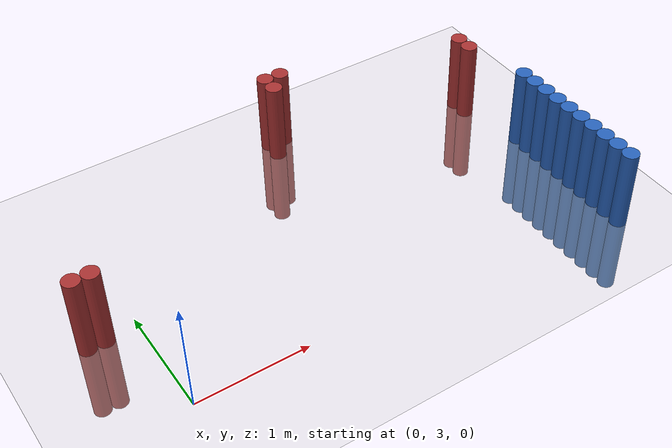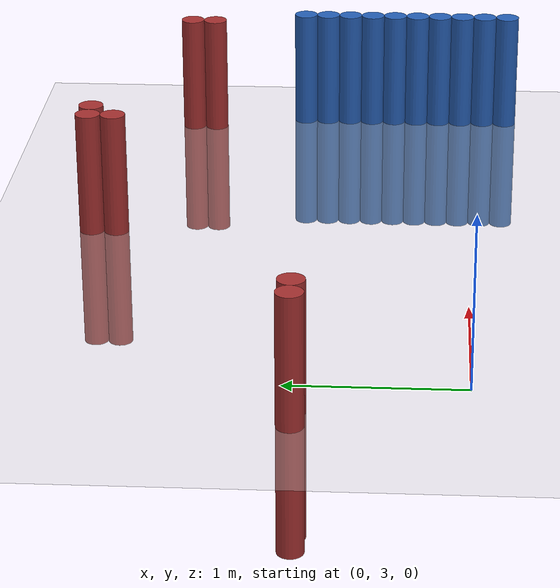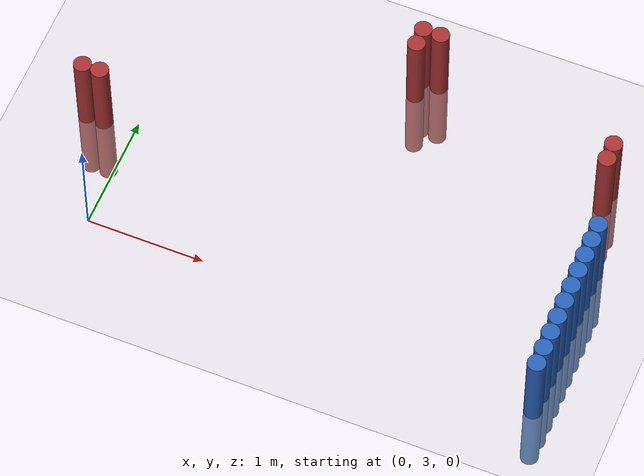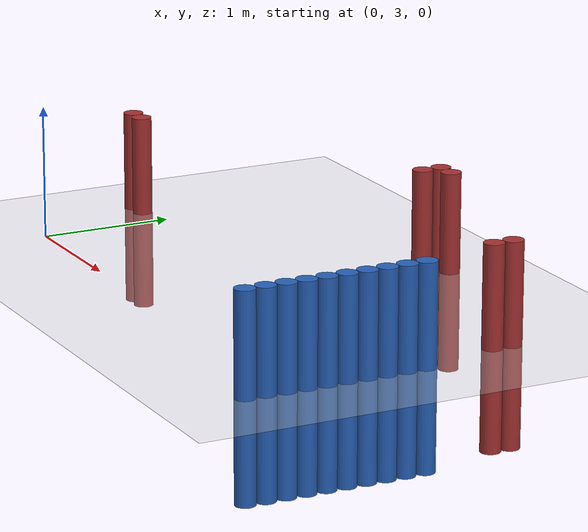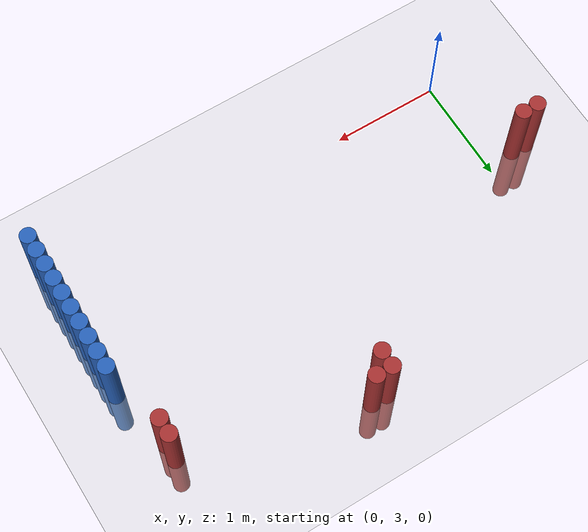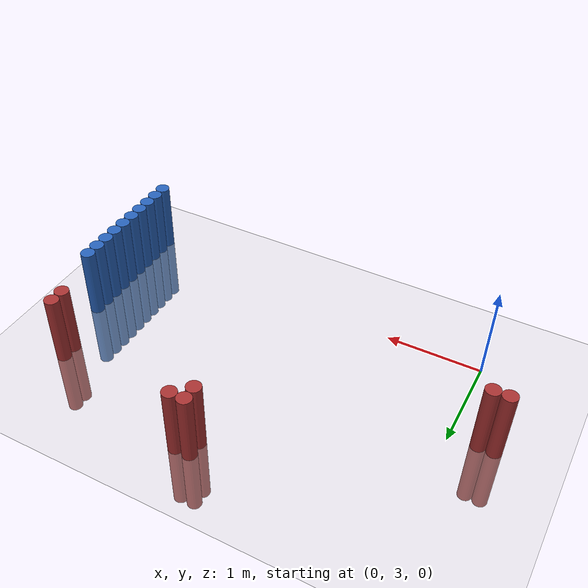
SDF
<sdf version="1.6">
 <world name="default">
  <model name="ground_plane">
   <static>1</static>
   <link name="link">
    <collision name="collision">
     <geometry><plane><normal>0 0 1</normal><size>100 100</size></plane></geometry>
     <surface><friction><ode><mu>100</mu><mu2>50</mu2></ode></friction></surface>
    </collision>
    <visual name="visual">
     <cast_shadows>0</cast_shadows>
     <geometry><plane><normal>0 0 1</normal><size>100 100</size></plane></geometry>
     <material>
      <script><uri>file://media/materials/scripts/gazebo.material</uri><name>Gazebo/Grey</name></script>
     </material>
    </visual>
   </link>
  </model>
  <model name="unit_cylinder_150">
   <static>1</static>
   <pose>3.925000 2.725000 0.000000 0.000000 0.000000 0.000000</pose>
   <link name="link">
    <inertial>
     <mass>1</mass>
     <inertia><ixx>0.145833</ixx><ixy>0</ixy><ixz>0</ixz><iyy>0.145833</iyy><iyz>0</iyz><izz>0.125</izz></inertia>
    </inertial>
    <collision name="collision">
     <geometry><cylinder><radius>0.075000</radius><length>1.5</length></cylinder></geometry>
    </collision>
    <visual name="visual">
     <geometry><cylinder><radius>0.075000</radius><length>1.5</length></cylinder></geometry>
     <material>
      <ambient>0.152000 0.379000 0.720000 1</ambient>
      <diffuse>0.152000 0.379000 0.720000 1</diffuse>
     </material>
     <material>
      <script><name>Gazebo/Grey</name><uri>file://media/materials/scripts/gazebo.material</uri></script>
     </material>
    </visual>
   </link>
  </model>
  <model name="unit_cylinder_152">
   <static>1</static>
   <pose>3.925000 2.875000 0.000000 0.000000 0.000000 0.000000</pose>
   <link name="link">
    <inertial>
     <mass>1</mass>
     <inertia><ixx>0.145833</ixx><ixy>0</ixy><ixz>0</ixz><iyy>0.145833</iyy><iyz>0</iyz><izz>0.125</izz></inertia>
    </inertial>
    <collision name="collision">
     <geometry><cylinder><radius>0.075000</radius><length>1.5</length></cylinder></geometry>
    </collision>
    <visual name="visual">
     <geometry><cylinder><radius>0.075000</radius><length>1.5</length></cylinder></geometry>
     <material>
      <ambient>0.152000 0.379000 0.720000 1</ambient>
      <diffuse>0.152000 0.379000 0.720000 1</diffuse>
     </material>
     <material>
      <script><name>Gazebo/Grey</name><uri>file://media/materials/scripts/gazebo.material</uri></script>
     </material>
    </visual>
   </link>
  </model>
  <model name="unit_cylinder_154">
   <static>1</static>
   <pose>3.925000 3.025000 0.000000 0.000000 0.000000 0.000000</pose>
   <link name="link">
    <inertial>
     <mass>1</mass>
     <inertia><ixx>0.145833</ixx><ixy>0</ixy><ixz>0</ixz><iyy>0.145833</iyy><iyz>0</iyz><izz>0.125</izz></inertia>
    </inertial>
    <collision name="collision">
     <geometry><cylinder><radius>0.075000</radius><length>1.5</length></cylinder></geometry>
    </collision>
    <visual name="visual">
     <geometry><cylinder><radius>0.075000</radius><length>1.5</length></cylinder></geometry>
     <material>
      <ambient>0.152000 0.379000 0.720000 1</ambient>
      <diffuse>0.152000 0.379000 0.720000 1</diffuse>
     </material>
     <material>
      <script><name>Gazebo/Grey</name><uri>file://media/materials/scripts/gazebo.material</uri></script>
     </material>
    </visual>
   </link>
  </model>
  <model name="unit_cylinder_156">
   <static>1</static>
   <pose>3.925000 3.175000 0.000000 0.000000 0.000000 0.000000</pose>
   <link name="link">
    <inertial>
     <mass>1</mass>
     <inertia><ixx>0.145833</ixx><ixy>0</ixy><ixz>0</ixz><iyy>0.145833</iyy><iyz>0</iyz><izz>0.125</izz></inertia>
    </inertial>
    <collision name="collision">
     <geometry><cylinder><radius>0.075000</radius><length>1.5</length></cylinder></geometry>
    </collision>
    <visual name="visual">
     <geometry><cylinder><radius>0.075000</radius><length>1.5</length></cylinder></geometry>
     <material>
      <ambient>0.152000 0.379000 0.720000 1</ambient>
      <diffuse>0.152000 0.379000 0.720000 1</diffuse>
     </material>
     <material>
      <script><name>Gazebo/Grey</name><uri>file://media/materials/scripts/gazebo.material</uri></script>
     </material>
    </visual>
   </link>
  </model>
  <model name="unit_cylinder_158">
   <static>1</static>
   <pose>3.925000 3.325000 0.000000 0.000000 0.000000 0.000000</pose>
   <link name="link">
    <inertial>
     <mass>1</mass>
     <inertia><ixx>0.145833</ixx><ixy>0</ixy><ixz>0</ixz><iyy>0.145833</iyy><iyz>0</iyz><izz>0.125</izz></inertia>
    </inertial>
    <collision name="collision">
     <geometry><cylinder><radius>0.075000</radius><length>1.5</length></cylinder></geometry>
    </collision>
    <visual name="visual">
     <geometry><cylinder><radius>0.075000</radius><length>1.5</length></cylinder></geometry>
     <material>
      <ambient>0.152000 0.379000 0.720000 1</ambient>
      <diffuse>0.152000 0.379000 0.720000 1</diffuse>
     </material>
     <material>
      <script><name>Gazebo/Grey</name><uri>file://media/materials/scripts/gazebo.material</uri></script>
     </material>
    </visual>
   </link>
  </model>
  <model name="unit_cylinder_160">
   <static>1</static>
   <pose>3.925000 3.475000 0.000000 0.000000 0.000000 0.000000</pose>
   <link name="link">
    <inertial>
     <mass>1</mass>
     <inertia><ixx>0.145833</ixx><ixy>0</ixy><ixz>0</ixz><iyy>0.145833</iyy><iyz>0</iyz><izz>0.125</izz></inertia>
    </inertial>
    <collision name="collision">
     <geometry><cylinder><radius>0.075000</radius><length>1.5</length></cylinder></geometry>
    </collision>
    <visual name="visual">
     <geometry><cylinder><radius>0.075000</radius><length>1.5</length></cylinder></geometry>
     <material>
      <ambient>0.152000 0.379000 0.720000 1</ambient>
      <diffuse>0.152000 0.379000 0.720000 1</diffuse>
     </material>
     <material>
      <script><name>Gazebo/Grey</name><uri>file://media/materials/scripts/gazebo.material</uri></script>
     </material>
    </visual>
   </link>
  </model>
  <model name="unit_cylinder_162">
   <static>1</static>
   <pose>3.925000 3.625000 0.000000 0.000000 0.000000 0.000000</pose>
   <link name="link">
    <inertial>
     <mass>1</mass>
     <inertia><ixx>0.145833</ixx><ixy>0</ixy><ixz>0</ixz><iyy>0.145833</iyy><iyz>0</iyz><izz>0.125</izz></inertia>
    </inertial>
    <collision name="collision">
     <geometry><cylinder><radius>0.075000</radius><length>1.5</length></cylinder></geometry>
    </collision>
    <visual name="visual">
     <geometry><cylinder><radius>0.075000</radius><length>1.5</length></cylinder></geometry>
     <material>
      <ambient>0.152000 0.379000 0.720000 1</ambient>
      <diffuse>0.152000 0.379000 0.720000 1</diffuse>
     </material>
     <material>
      <script><name>Gazebo/Grey</name><uri>file://media/materials/scripts/gazebo.material</uri></script>
     </material>
    </visual>
   </link>
  </model>
  <model name="unit_cylinder_164">
   <static>1</static>
   <pose>3.925000 3.775000 0.000000 0.000000 0.000000 0.000000</pose>
   <link name="link">
    <inertial>
     <mass>1</mass>
     <inertia><ixx>0.145833</ixx><ixy>0</ixy><ixz>0</ixz><iyy>0.145833</iyy><iyz>0</iyz><izz>0.125</izz></inertia>
    </inertial>
    <collision name="collision">
     <geometry><cylinder><radius>0.075000</radius><length>1.5</length></cylinder></geometry>
    </collision>
    <visual name="visual">
     <geometry><cylinder><radius>0.075000</radius><length>1.5</length></cylinder></geometry>
     <material>
      <ambient>0.152000 0.379000 0.720000 1</ambient>
      <diffuse>0.152000 0.379000 0.720000 1</diffuse>
     </material>
     <material>
      <script><name>Gazebo/Grey</name><uri>file://media/materials/scripts/gazebo.material</uri></script>
     </material>
    </visual>
   </link>
  </model>
  <model name="unit_cylinder_166">
   <static>1</static>
   <pose>3.925000 3.925000 0.000000 0.000000 0.000000 0.000000</pose>
   <link name="link">
    <inertial>
     <mass>1</mass>
     <inertia><ixx>0.145833</ixx><ixy>0</ixy><ixz>0</ixz><iyy>0.145833</iyy><iyz>0</iyz><izz>0.125</izz></inertia>
    </inertial>
    <collision name="collision">
     <geometry><cylinder><radius>0.075000</radius><length>1.5</length></cylinder></geometry>
    </collision>
    <visual name="visual">
     <geometry><cylinder><radius>0.075000</radius><length>1.5</length></cylinder></geometry>
     <material>
      <ambient>0.152000 0.379000 0.720000 1</ambient>
      <diffuse>0.152000 0.379000 0.720000 1</diffuse>
     </material>
     <material>
      <script><name>Gazebo/Grey</name><uri>file://media/materials/scripts/gazebo.material</uri></script>
     </material>
    </visual>
   </link>
  </model>
  <model name="unit_cylinder_168">
   <static>1</static>
   <pose>3.925000 4.075000 0.000000 0.000000 0.000000 0.000000</pose>
   <link name="link">
    <inertial>
     <mass>1</mass>
     <inertia><ixx>0.145833</ixx><ixy>0</ixy><ixz>0</ixz><iyy>0.145833</iyy><iyz>0</iyz><izz>0.125</izz></inertia>
    </inertial>
    <collision name="collision">
     <geometry><cylinder><radius>0.075000</radius><length>1.5</length></cylinder></geometry>
    </collision>
    <visual name="visual">
     <geometry><cylinder><radius>0.075000</radius><length>1.5</length></cylinder></geometry>
     <material>
      <ambient>0.152000 0.379000 0.720000 1</ambient>
      <diffuse>0.152000 0.379000 0.720000 1</diffuse>
     </material>
     <material>
      <script><name>Gazebo/Grey</name><uri>file://media/materials/scripts/gazebo.material</uri></script>
     </material>
    </visual>
   </link>
  </model>
  <model name="unit_cylinder_294">
   <static>1</static>
   <pose>-0.425000 3.925000 0.000000 0.000000 0.000000 0.000000</pose>
   <link name="link">
    <inertial>
     <mass>1</mass>
     <inertia><ixx>0.145833</ixx><ixy>0</ixy><ixz>0</ixz><iyy>0.145833</iyy><iyz>0</iyz><izz>0.125</izz></inertia>
    </inertial>
    <collision name="collision">
     <geometry><cylinder><radius>0.075000</radius><length>1.5</length></cylinder></geometry>
    </collision>
    <visual name="visual">
     <geometry><cylinder><radius>0.075000</radius><length>1.5</length></cylinder></geometry>
     <material>
      <ambient>0.648000 0.192000 0.192000 1</ambient>
      <diffuse>0.648000 0.192000 0.192000 1</diffuse>
     </material>
     <material>
      <script><name>Gazebo/Grey</name><uri>file://media/materials/scripts/gazebo.material</uri></script>
     </material>
    </visual>
   </link>
  </model>
  <model name="unit_cylinder_297">
   <static>1</static>
   <pose>-0.275000 3.925000 0.000000 0.000000 0.000000 0.000000</pose>
   <link name="link">
    <inertial>
     <mass>1</mass>
     <inertia><ixx>0.145833</ixx><ixy>0</ixy><ixz>0</ixz><iyy>0.145833</iyy><iyz>0</iyz><izz>0.125</izz></inertia>
    </inertial>
    <collision name="collision">
     <geometry><cylinder><radius>0.075000</radius><length>1.5</length></cylinder></geometry>
    </collision>
    <visual name="visual">
     <geometry><cylinder><radius>0.075000</radius><length>1.5</length></cylinder></geometry>
     <material>
      <ambient>0.648000 0.192000 0.192000 1</ambient>
      <diffuse>0.648000 0.192000 0.192000 1</diffuse>
     </material>
     <material>
      <script><name>Gazebo/Grey</name><uri>file://media/materials/scripts/gazebo.material</uri></script>
     </material>
    </visual>
   </link>
  </model>
  <model name="unit_cylinder_310">
   <static>1</static>
   <pose>1.975000 5.125000 0.000000 0.000000 0.000000 0.000000</pose>
   <link name="link">
    <inertial>
     <mass>1</mass>
     <inertia><ixx>0.145833</ixx><ixy>0</ixy><ixz>0</ixz><iyy>0.145833</iyy><iyz>0</iyz><izz>0.125</izz></inertia>
    </inertial>
    <collision name="collision">
     <geometry><cylinder><radius>0.075000</radius><length>1.5</length></cylinder></geometry>
    </collision>
    <visual name="visual">
     <geometry><cylinder><radius>0.075000</radius><length>1.5</length></cylinder></geometry>
     <material>
      <ambient>0.648000 0.192000 0.192000 1</ambient>
      <diffuse>0.648000 0.192000 0.192000 1</diffuse>
     </material>
     <material>
      <script><name>Gazebo/Grey</name><uri>file://media/materials/scripts/gazebo.material</uri></script>
     </material>
    </visual>
   </link>
  </model>
  <model name="unit_cylinder_311">
   <static>1</static>
   <pose>1.975000 5.275000 0.000000 0.000000 0.000000 0.000000</pose>
   <link name="link">
    <inertial>
     <mass>1</mass>
     <inertia><ixx>0.145833</ixx><ixy>0</ixy><ixz>0</ixz><iyy>0.145833</iyy><iyz>0</iyz><izz>0.125</izz></inertia>
    </inertial>
    <collision name="collision">
     <geometry><cylinder><radius>0.075000</radius><length>1.5</length></cylinder></geometry>
    </collision>
    <visual name="visual">
     <geometry><cylinder><radius>0.075000</radius><length>1.5</length></cylinder></geometry>
     <material>
      <ambient>0.648000 0.192000 0.192000 1</ambient>
      <diffuse>0.648000 0.192000 0.192000 1</diffuse>
     </material>
     <material>
      <script><name>Gazebo/Grey</name><uri>file://media/materials/scripts/gazebo.material</uri></script>
     </material>
    </visual>
   </link>
  </model>
  <model name="unit_cylinder_314">
   <static>1</static>
   <pose>2.125000 5.275000 0.000000 0.000000 0.000000 0.000000</pose>
   <link name="link">
    <inertial>
     <mass>1</mass>
     <inertia><ixx>0.145833</ixx><ixy>0</ixy><ixz>0</ixz><iyy>0.145833</iyy><iyz>0</iyz><izz>0.125</izz></inertia>
    </inertial>
    <collision name="collision">
     <geometry><cylinder><radius>0.075000</radius><length>1.5</length></cylinder></geometry>
    </collision>
    <visual name="visual">
     <geometry><cylinder><radius>0.075000</radius><length>1.5</length></cylinder></geometry>
     <material>
      <ambient>0.648000 0.192000 0.192000 1</ambient>
      <diffuse>0.648000 0.192000 0.192000 1</diffuse>
     </material>
     <material>
      <script><name>Gazebo/Grey</name><uri>file://media/materials/scripts/gazebo.material</uri></script>
     </material>
    </visual>
   </link>
  </model>
  <model name="unit_cylinder_328">
   <static>1</static>
   <pose>3.775000 4.675000 0.000000 0.000000 0.000000 0.000000</pose>
   <link name="link">
    <inertial>
     <mass>1</mass>
     <inertia><ixx>0.145833</ixx><ixy>0</ixy><ixz>0</ixz><iyy>0.145833</iyy><iyz>0</iyz><izz>0.125</izz></inertia>
    </inertial>
    <collision name="collision">
     <geometry><cylinder><radius>0.075000</radius><length>1.5</length></cylinder></geometry>
    </collision>
    <visual name="visual">
     <geometry><cylinder><radius>0.075000</radius><length>1.5</length></cylinder></geometry>
     <material>
      <ambient>0.648000 0.192000 0.192000 1</ambient>
      <diffuse>0.648000 0.192000 0.192000 1</diffuse>
     </material>
     <material>
      <script><name>Gazebo/Grey</name><uri>file://media/materials/scripts/gazebo.material</uri></script>
     </material>
    </visual>
   </link>
  </model>
  <model name="unit_cylinder_329">
   <static>1</static>
   <pose>3.775000 4.825000 0.000000 0.000000 0.000000 0.000000</pose>
   <link name="link">
    <inertial>
     <mass>1</mass>
     <inertia><ixx>0.145833</ixx><ixy>0</ixy><ixz>0</ixz><iyy>0.145833</iyy><iyz>0</iyz><izz>0.125</izz></inertia>
    </inertial>
    <collision name="collision">
     <geometry><cylinder><radius>0.075000</radius><length>1.5</length></cylinder></geometry>
    </collision>
    <visual name="visual">
     <geometry><cylinder><radius>0.075000</radius><length>1.5</length></cylinder></geometry>
     <material>
      <ambient>0.648000 0.192000 0.192000 1</ambient>
      <diffuse>0.648000 0.192000 0.192000 1</diffuse>
     </material>
     <material>
      <script><name>Gazebo/Grey</name><uri>file://media/materials/scripts/gazebo.material</uri></script>
     </material>
    </visual>
   </link>
  </model>
  <model name="unit_cylinder_361">
   <static>1</static>
   <pose>3.925000 2.725000 0.000000 0.000000 0.000000 0.000000</pose>
   <link name="link">
    <inertial>
     <mass>1</mass>
     <inertia><ixx>0.145833</ixx><ixy>0</ixy><ixz>0</ixz><iyy>0.145833</iyy><iyz>0</iyz><izz>0.125</izz></inertia>
    </inertial>
    <collision name="collision">
     <geometry><cylinder><radius>0.075000</radius><length>1.5</length></cylinder></geometry>
    </collision>
    <visual name="visual">
     <geometry><cylinder><radius>0.075000</radius><length>1.5</length></cylinder></geometry>
     <material>
      <ambient>0.152000 0.379000 0.720000 1</ambient>
      <diffuse>0.152000 0.379000 0.720000 1</diffuse>
     </material>
     <material>
      <script><name>Gazebo/Grey</name><uri>file://media/materials/scripts/gazebo.material</uri></script>
     </material>
    </visual>
   </link>
  </model>
  <model name="unit_cylinder_362">
   <static>1</static>
   <pose>3.925000 2.875000 0.000000 0.000000 0.000000 0.000000</pose>
   <link name="link">
    <inertial>
     <mass>1</mass>
     <inertia><ixx>0.145833</ixx><ixy>0</ixy><ixz>0</ixz><iyy>0.145833</iyy><iyz>0</iyz><izz>0.125</izz></inertia>
    </inertial>
    <collision name="collision">
     <geometry><cylinder><radius>0.075000</radius><length>1.5</length></cylinder></geometry>
    </collision>
    <visual name="visual">
     <geometry><cylinder><radius>0.075000</radius><length>1.5</length></cylinder></geometry>
     <material>
      <ambient>0.152000 0.379000 0.720000 1</ambient>
      <diffuse>0.152000 0.379000 0.720000 1</diffuse>
     </material>
     <material>
      <script><name>Gazebo/Grey</name><uri>file://media/materials/scripts/gazebo.material</uri></script>
     </material>
    </visual>
   </link>
  </model>
  <model name="unit_cylinder_363">
   <static>1</static>
   <pose>3.925000 3.025000 0.000000 0.000000 0.000000 0.000000</pose>
   <link name="link">
    <inertial>
     <mass>1</mass>
     <inertia><ixx>0.145833</ixx><ixy>0</ixy><ixz>0</ixz><iyy>0.145833</iyy><iyz>0</iyz><izz>0.125</izz></inertia>
    </inertial>
    <collision name="collision">
     <geometry><cylinder><radius>0.075000</radius><length>1.5</length></cylinder></geometry>
    </collision>
    <visual name="visual">
     <geometry><cylinder><radius>0.075000</radius><length>1.5</length></cylinder></geometry>
     <material>
      <ambient>0.152000 0.379000 0.720000 1</ambient>
      <diffuse>0.152000 0.379000 0.720000 1</diffuse>
     </material>
     <material>
      <script><name>Gazebo/Grey</name><uri>file://media/materials/scripts/gazebo.material</uri></script>
     </material>
    </visual>
   </link>
  </model>
  <model name="unit_cylinder_364">
   <static>1</static>
   <pose>3.925000 3.175000 0.000000 0.000000 0.000000 0.000000</pose>
   <link name="link">
    <inertial>
     <mass>1</mass>
     <inertia><ixx>0.145833</ixx><ixy>0</ixy><ixz>0</ixz><iyy>0.145833</iyy><iyz>0</iyz><izz>0.125</izz></inertia>
    </inertial>
    <collision name="collision">
     <geometry><cylinder><radius>0.075000</radius><length>1.5</length></cylinder></geometry>
    </collision>
    <visual name="visual">
     <geometry><cylinder><radius>0.075000</radius><length>1.5</length></cylinder></geometry>
     <material>
      <ambient>0.152000 0.379000 0.720000 1</ambient>
      <diffuse>0.152000 0.379000 0.720000 1</diffuse>
     </material>
     <material>
      <script><name>Gazebo/Grey</name><uri>file://media/materials/scripts/gazebo.material</uri></script>
     </material>
    </visual>
   </link>
  </model>
  <model name="unit_cylinder_365">
   <static>1</static>
   <pose>3.925000 3.325000 0.000000 0.000000 0.000000 0.000000</pose>
   <link name="link">
    <inertial>
     <mass>1</mass>
     <inertia><ixx>0.145833</ixx><ixy>0</ixy><ixz>0</ixz><iyy>0.145833</iyy><iyz>0</iyz><izz>0.125</izz></inertia>
    </inertial>
    <collision name="collision">
     <geometry><cylinder><radius>0.075000</radius><length>1.5</length></cylinder></geometry>
    </collision>
    <visual name="visual">
     <geometry><cylinder><radius>0.075000</radius><length>1.5</length></cylinder></geometry>
     <material>
      <ambient>0.152000 0.379000 0.720000 1</ambient>
      <diffuse>0.152000 0.379000 0.720000 1</diffuse>
     </material>
     <material>
      <script><name>Gazebo/Grey</name><uri>file://media/materials/scripts/gazebo.material</uri></script>
     </material>
    </visual>
   </link>
  </model>
  <model name="unit_cylinder_366">
   <static>1</static>
   <pose>3.925000 3.475000 0.000000 0.000000 0.000000 0.000000</pose>
   <link name="link">
    <inertial>
     <mass>1</mass>
     <inertia><ixx>0.145833</ixx><ixy>0</ixy><ixz>0</ixz><iyy>0.145833</iyy><iyz>0</iyz><izz>0.125</izz></inertia>
    </inertial>
    <collision name="collision">
     <geometry><cylinder><radius>0.075000</radius><length>1.5</length></cylinder></geometry>
    </collision>
    <visual name="visual">
     <geometry><cylinder><radius>0.075000</radius><length>1.5</length></cylinder></geometry>
     <material>
      <ambient>0.152000 0.379000 0.720000 1</ambient>
      <diffuse>0.152000 0.379000 0.720000 1</diffuse>
     </material>
     <material>
      <script><name>Gazebo/Grey</name><uri>file://media/materials/scripts/gazebo.material</uri></script>
     </material>
    </visual>
   </link>
  </model>
  <model name="unit_cylinder_367">
   <static>1</static>
   <pose>3.925000 3.625000 0.000000 0.000000 0.000000 0.000000</pose>
   <link name="link">
    <inertial>
     <mass>1</mass>
     <inertia><ixx>0.145833</ixx><ixy>0</ixy><ixz>0</ixz><iyy>0.145833</iyy><iyz>0</iyz><izz>0.125</izz></inertia>
    </inertial>
    <collision name="collision">
     <geometry><cylinder><radius>0.075000</radius><length>1.5</length></cylinder></geometry>
    </collision>
    <visual name="visual">
     <geometry><cylinder><radius>0.075000</radius><length>1.5</length></cylinder></geometry>
     <material>
      <ambient>0.152000 0.379000 0.720000 1</ambient>
      <diffuse>0.152000 0.379000 0.720000 1</diffuse>
     </material>
     <material>
      <script><name>Gazebo/Grey</name><uri>file://media/materials/scripts/gazebo.material</uri></script>
     </material>
    </visual>
   </link>
  </model>
  <model name="unit_cylinder_368">
   <static>1</static>
   <pose>3.925000 3.775000 0.000000 0.000000 0.000000 0.000000</pose>
   <link name="link">
    <inertial>
     <mass>1</mass>
     <inertia><ixx>0.145833</ixx><ixy>0</ixy><ixz>0</ixz><iyy>0.145833</iyy><iyz>0</iyz><izz>0.125</izz></inertia>
    </inertial>
    <collision name="collision">
     <geometry><cylinder><radius>0.075000</radius><length>1.5</length></cylinder></geometry>
    </collision>
    <visual name="visual">
     <geometry><cylinder><radius>0.075000</radius><length>1.5</length></cylinder></geometry>
     <material>
      <ambient>0.152000 0.379000 0.720000 1</ambient>
      <diffuse>0.152000 0.379000 0.720000 1</diffuse>
     </material>
     <material>
      <script><name>Gazebo/Grey</name><uri>file://media/materials/scripts/gazebo.material</uri></script>
     </material>
    </visual>
   </link>
  </model>
  <model name="unit_cylinder_369">
   <static>1</static>
   <pose>3.925000 3.925000 0.000000 0.000000 0.000000 0.000000</pose>
   <link name="link">
    <inertial>
     <mass>1</mass>
     <inertia><ixx>0.145833</ixx><ixy>0</ixy><ixz>0</ixz><iyy>0.145833</iyy><iyz>0</iyz><izz>0.125</izz></inertia>
    </inertial>
    <collision name="collision">
     <geometry><cylinder><radius>0.075000</radius><length>1.5</length></cylinder></geometry>
    </collision>
    <visual name="visual">
     <geometry><cylinder><radius>0.075000</radius><length>1.5</length></cylinder></geometry>
     <material>
      <ambient>0.152000 0.379000 0.720000 1</ambient>
      <diffuse>0.152000 0.379000 0.720000 1</diffuse>
     </material>
     <material>
      <script><name>Gazebo/Grey</name><uri>file://media/materials/scripts/gazebo.material</uri></script>
     </material>
    </visual>
   </link>
  </model>
  <model name="unit_cylinder_370">
   <static>1</static>
   <pose>3.925000 4.075000 0.000000 0.000000 0.000000 0.000000</pose>
   <link name="link">
    <inertial>
     <mass>1</mass>
     <inertia><ixx>0.145833</ixx><ixy>0</ixy><ixz>0</ixz><iyy>0.145833</iyy><iyz>0</iyz><izz>0.125</izz></inertia>
    </inertial>
    <collision name="collision">
     <geometry><cylinder><radius>0.075000</radius><length>1.5</length></cylinder></geometry>
    </collision>
    <visual name="visual">
     <geometry><cylinder><radius>0.075000</radius><length>1.5</length></cylinder></geometry>
     <material>
      <ambient>0.152000 0.379000 0.720000 1</ambient>
      <diffuse>0.152000 0.379000 0.720000 1</diffuse>
     </material>
     <material>
      <script><name>Gazebo/Grey</name><uri>file://media/materials/scripts/gazebo.material</uri></script>
     </material>
    </visual>
   </link>
  </model>
 </world>
</sdf>
